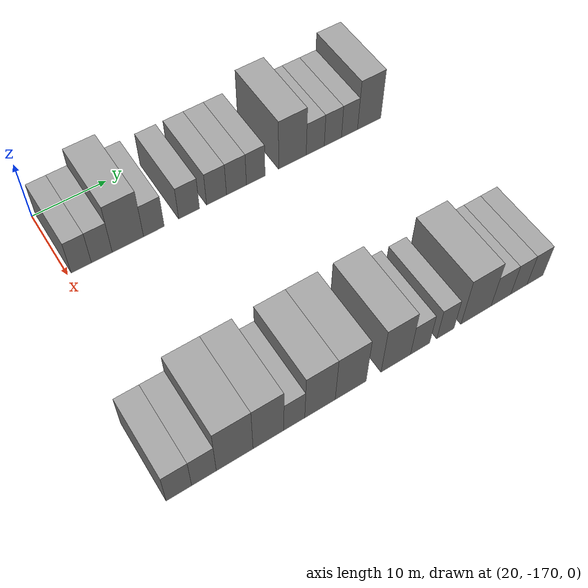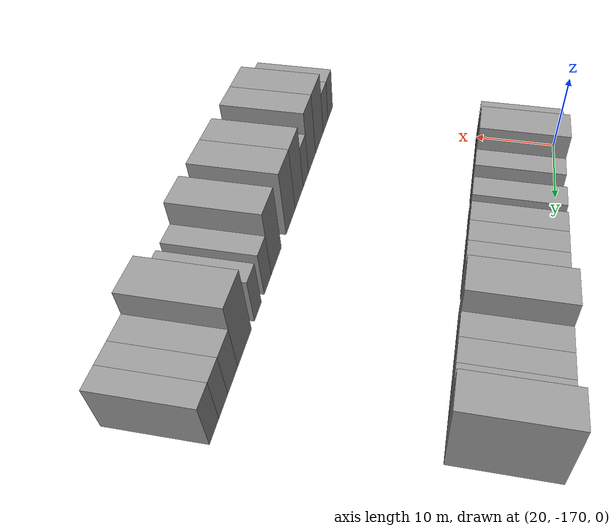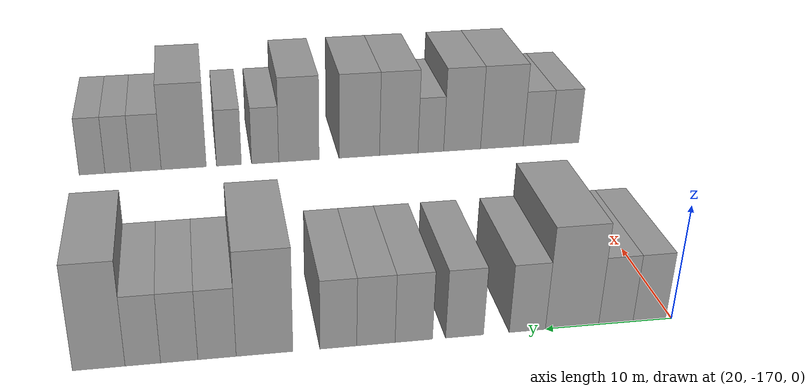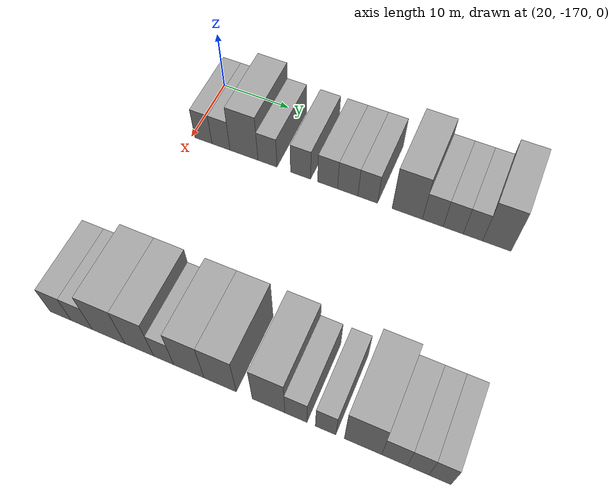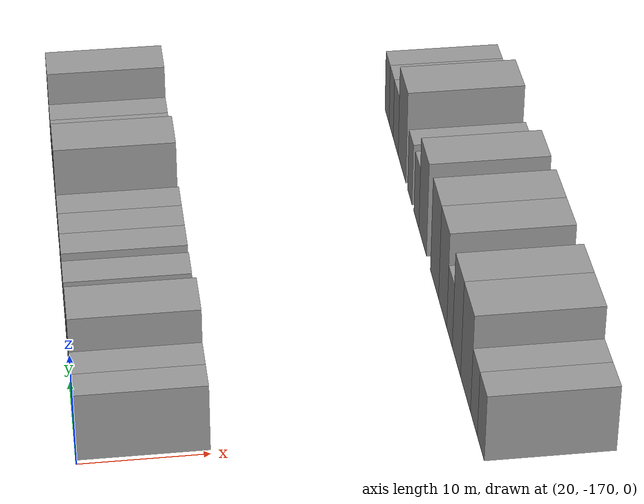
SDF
<sdf version="1.6">
 <world name="default">
  <model name="building_14">
   <static>1</static>
   <pose>25.0000 -168.2196 0 0.000000 0.000000 0.000000</pose>
   <link name="link">
    <pose>0 0 3.00 0 0 0</pose>
    <collision name="collision"><geometry><box><size>10.0000 2.6327 6.0000</size></box></geometry></collision>
    <visual name="visual">
     <cast_shadows>0</cast_shadows>
     <geometry><box><size>10.0000 2.6327 6.0000</size></box></geometry>
     <material>
      <script>
       <uri>model://grey_wall/materials/scripts</uri>
       <uri>model://grey_wall/materials/textures</uri>
       <name>vrc/grey_wall</name>
      </script>
     </material>
    </visual>
   </link>
  </model>
  <model name="building_15">
   <static>1</static>
   <pose>25.0000 -165.5320 0 0.000000 0.000000 0.000000</pose>
   <link name="link">
    <pose>0 0 3.00 0 0 0</pose>
    <collision name="collision"><geometry><box><size>10.0000 2.7424 6.0000</size></box></geometry></collision>
    <visual name="visual">
     <cast_shadows>0</cast_shadows>
     <geometry><box><size>10.0000 2.7424 6.0000</size></box></geometry>
     <material>
      <script>
       <uri>model://grey_wall/materials/scripts</uri>
       <uri>model://grey_wall/materials/textures</uri>
       <name>vrc/grey_wall</name>
      </script>
     </material>
    </visual>
   </link>
  </model>
  <model name="building_16">
   <static>1</static>
   <pose>25.0000 -162.0608 0 0.000000 0.000000 0.000000</pose>
   <link name="link">
    <pose>0 0 4.50 0 0 0</pose>
    <collision name="collision"><geometry><box><size>10.0000 4.2000 9.0000</size></box></geometry></collision>
    <visual name="visual">
     <cast_shadows>0</cast_shadows>
     <geometry><box><size>10.0000 4.2000 9.0000</size></box></geometry>
     <material>
      <script>
       <uri>model://grey_wall/materials/scripts</uri>
       <uri>model://grey_wall/materials/textures</uri>
       <name>vrc/grey_wall</name>
      </script>
     </material>
    </visual>
   </link>
  </model>
  <model name="building_17">
   <static>1</static>
   <pose>25.0000 -158.5487 0 0.000000 0.000000 0.000000</pose>
   <link name="link">
    <pose>0 0 3.00 0 0 0</pose>
    <collision name="collision"><geometry><box><size>10.0000 2.8243 6.0000</size></box></geometry></collision>
    <visual name="visual">
     <cast_shadows>0</cast_shadows>
     <geometry><box><size>10.0000 2.8243 6.0000</size></box></geometry>
     <material>
      <script>
       <uri>model://grey_wall/materials/scripts</uri>
       <uri>model://grey_wall/materials/textures</uri>
       <name>vrc/grey_wall</name>
      </script>
     </material>
    </visual>
   </link>
  </model>
  <model name="building_18">
   <static>1</static>
   <pose>25.0000 -153.6784 0 0.000000 0.000000 0.000000</pose>
   <link name="link">
    <pose>0 0 3.00 0 0 0</pose>
    <collision name="collision"><geometry><box><size>10.0000 2.9164 6.0000</size></box></geometry></collision>
    <visual name="visual">
     <cast_shadows>0</cast_shadows>
     <geometry><box><size>10.0000 2.9164 6.0000</size></box></geometry>
     <material>
      <script>
       <uri>model://grey_wall/materials/scripts</uri>
       <uri>model://grey_wall/materials/textures</uri>
       <name>vrc/grey_wall</name>
      </script>
     </material>
    </visual>
   </link>
  </model>
  <model name="building_19">
   <static>1</static>
   <pose>25.0000 -149.7978 0 0.000000 0.000000 0.000000</pose>
   <link name="link">
    <pose>0 0 3.00 0 0 0</pose>
    <collision name="collision"><geometry><box><size>10.0000 2.8447 6.0000</size></box></geometry></collision>
    <visual name="visual">
     <cast_shadows>0</cast_shadows>
     <geometry><box><size>10.0000 2.8447 6.0000</size></box></geometry>
     <material>
      <script>
       <uri>model://grey_wall/materials/scripts</uri>
       <uri>model://grey_wall/materials/textures</uri>
       <name>vrc/grey_wall</name>
      </script>
     </material>
    </visual>
   </link>
  </model>
  <model name="building_20">
   <static>1</static>
   <pose>25.0000 -146.9316 0 0.000000 0.000000 0.000000</pose>
   <link name="link">
    <pose>0 0 3.00 0 0 0</pose>
    <collision name="collision"><geometry><box><size>10.0000 2.8878 6.0000</size></box></geometry></collision>
    <visual name="visual">
     <cast_shadows>0</cast_shadows>
     <geometry><box><size>10.0000 2.8878 6.0000</size></box></geometry>
     <material>
      <script>
       <uri>model://grey_wall/materials/scripts</uri>
       <uri>model://grey_wall/materials/textures</uri>
       <name>vrc/grey_wall</name>
      </script>
     </material>
    </visual>
   </link>
  </model>
  <model name="building_21">
   <static>1</static>
   <pose>25.0000 -144.1135 0 0.000000 0.000000 0.000000</pose>
   <link name="link">
    <pose>0 0 3.00 0 0 0</pose>
    <collision name="collision"><geometry><box><size>10.0000 2.7484 6.0000</size></box></geometry></collision>
    <visual name="visual">
     <cast_shadows>0</cast_shadows>
     <geometry><box><size>10.0000 2.7484 6.0000</size></box></geometry>
     <material>
      <script>
       <uri>model://grey_wall/materials/scripts</uri>
       <uri>model://grey_wall/materials/textures</uri>
       <name>vrc/grey_wall</name>
      </script>
     </material>
    </visual>
   </link>
  </model>
  <model name="building_22">
   <static>1</static>
   <pose>25.0000 -138.6592 0 0.000000 0.000000 0.000000</pose>
   <link name="link">
    <pose>0 0 4.50 0 0 0</pose>
    <collision name="collision"><geometry><box><size>10.0000 4.1602 9.0000</size></box></geometry></collision>
    <visual name="visual">
     <cast_shadows>0</cast_shadows>
     <geometry><box><size>10.0000 4.1602 9.0000</size></box></geometry>
     <material>
      <script>
       <uri>model://grey_wall/materials/scripts</uri>
       <uri>model://grey_wall/materials/textures</uri>
       <name>vrc/grey_wall</name>
      </script>
     </material>
    </visual>
   </link>
  </model>
  <model name="building_23">
   <static>1</static>
   <pose>25.0000 -135.1899 0 0.000000 0.000000 0.000000</pose>
   <link name="link">
    <pose>0 0 3.00 0 0 0</pose>
    <collision name="collision"><geometry><box><size>10.0000 2.7784 6.0000</size></box></geometry></collision>
    <visual name="visual">
     <cast_shadows>0</cast_shadows>
     <geometry><box><size>10.0000 2.7784 6.0000</size></box></geometry>
     <material>
      <script>
       <uri>model://grey_wall/materials/scripts</uri>
       <uri>model://grey_wall/materials/textures</uri>
       <name>vrc/grey_wall</name>
      </script>
     </material>
    </visual>
   </link>
  </model>
  <model name="building_24">
   <static>1</static>
   <pose>25.0000 -132.4624 0 0.000000 0.000000 0.000000</pose>
   <link name="link">
    <pose>0 0 3.00 0 0 0</pose>
    <collision name="collision"><geometry><box><size>10.0000 2.6766 6.0000</size></box></geometry></collision>
    <visual name="visual">
     <cast_shadows>0</cast_shadows>
     <geometry><box><size>10.0000 2.6766 6.0000</size></box></geometry>
     <material>
      <script>
       <uri>model://grey_wall/materials/scripts</uri>
       <uri>model://grey_wall/materials/textures</uri>
       <name>vrc/grey_wall</name>
      </script>
     </material>
    </visual>
   </link>
  </model>
  <model name="building_25">
   <static>1</static>
   <pose>25.0000 -129.8567 0 0.000000 0.000000 0.000000</pose>
   <link name="link">
    <pose>0 0 3.00 0 0 0</pose>
    <collision name="collision"><geometry><box><size>10.0000 2.5349 6.0000</size></box></geometry></collision>
    <visual name="visual">
     <cast_shadows>0</cast_shadows>
     <geometry><box><size>10.0000 2.5349 6.0000</size></box></geometry>
     <material>
      <script>
       <uri>model://grey_wall/materials/scripts</uri>
       <uri>model://grey_wall/materials/textures</uri>
       <name>vrc/grey_wall</name>
      </script>
     </material>
    </visual>
   </link>
  </model>
  <model name="building_26">
   <static>1</static>
   <pose>25.0000 -126.7291 0 0.000000 0.000000 0.000000</pose>
   <link name="link">
    <pose>0 0 4.50 0 0 0</pose>
    <collision name="collision"><geometry><box><size>10.0000 3.7203 9.0000</size></box></geometry></collision>
    <visual name="visual">
     <cast_shadows>0</cast_shadows>
     <geometry><box><size>10.0000 3.7203 9.0000</size></box></geometry>
     <material>
      <script>
       <uri>model://grey_wall/materials/scripts</uri>
       <uri>model://grey_wall/materials/textures</uri>
       <name>vrc/grey_wall</name>
      </script>
     </material>
    </visual>
   </link>
  </model>
  <model name="building_126">
   <static>1</static>
   <pose>55.0000 -171.8422 0 0.000000 0.000000 0.000000</pose>
   <link name="link">
    <pose>0 0 3.00 0 0 0</pose>
    <collision name="collision"><geometry><box><size>10.0000 2.9795 6.0000</size></box></geometry></collision>
    <visual name="visual">
     <cast_shadows>0</cast_shadows>
     <geometry><box><size>10.0000 2.9795 6.0000</size></box></geometry>
     <material>
      <script>
       <uri>model://grey_wall/materials/scripts</uri>
       <uri>model://grey_wall/materials/textures</uri>
       <name>vrc/grey_wall</name>
      </script>
     </material>
    </visual>
   </link>
  </model>
  <model name="building_127">
   <static>1</static>
   <pose>55.0000 -168.8943 0 0.000000 0.000000 0.000000</pose>
   <link name="link">
    <pose>0 0 3.00 0 0 0</pose>
    <collision name="collision"><geometry><box><size>10.0000 2.9164 6.0000</size></box></geometry></collision>
    <visual name="visual">
     <cast_shadows>0</cast_shadows>
     <geometry><box><size>10.0000 2.9164 6.0000</size></box></geometry>
     <material>
      <script>
       <uri>model://grey_wall/materials/scripts</uri>
       <uri>model://grey_wall/materials/textures</uri>
       <name>vrc/grey_wall</name>
      </script>
     </material>
    </visual>
   </link>
  </model>
  <model name="building_128">
   <static>1</static>
   <pose>55.0000 -165.2141 0 0.000000 0.000000 0.000000</pose>
   <link name="link">
    <pose>0 0 4.50 0 0 0</pose>
    <collision name="collision"><geometry><box><size>10.0000 4.4440 9.0000</size></box></geometry></collision>
    <visual name="visual">
     <cast_shadows>0</cast_shadows>
     <geometry><box><size>10.0000 4.4440 9.0000</size></box></geometry>
     <material>
      <script>
       <uri>model://grey_wall/materials/scripts</uri>
       <uri>model://grey_wall/materials/textures</uri>
       <name>vrc/grey_wall</name>
      </script>
     </material>
    </visual>
   </link>
  </model>
  <model name="building_129">
   <static>1</static>
   <pose>55.0000 -161.0821 0 0.000000 0.000000 0.000000</pose>
   <link name="link">
    <pose>0 0 4.50 0 0 0</pose>
    <collision name="collision"><geometry><box><size>10.0000 3.8199 9.0000</size></box></geometry></collision>
    <visual name="visual">
     <cast_shadows>0</cast_shadows>
     <geometry><box><size>10.0000 3.8199 9.0000</size></box></geometry>
     <material>
      <script>
       <uri>model://grey_wall/materials/scripts</uri>
       <uri>model://grey_wall/materials/textures</uri>
       <name>vrc/grey_wall</name>
      </script>
     </material>
    </visual>
   </link>
  </model>
  <model name="building_130">
   <static>1</static>
   <pose>55.0000 -157.8554 0 0.000000 0.000000 0.000000</pose>
   <link name="link">
    <pose>0 0 3.00 0 0 0</pose>
    <collision name="collision"><geometry><box><size>10.0000 2.6336 6.0000</size></box></geometry></collision>
    <visual name="visual">
     <cast_shadows>0</cast_shadows>
     <geometry><box><size>10.0000 2.6336 6.0000</size></box></geometry>
     <material>
      <script>
       <uri>model://grey_wall/materials/scripts</uri>
       <uri>model://grey_wall/materials/textures</uri>
       <name>vrc/grey_wall</name>
      </script>
     </material>
    </visual>
   </link>
  </model>
  <model name="building_131">
   <static>1</static>
   <pose>55.0000 -154.5761 0 0.000000 0.000000 0.000000</pose>
   <link name="link">
    <pose>0 0 4.50 0 0 0</pose>
    <collision name="collision"><geometry><box><size>10.0000 3.9250 9.0000</size></box></geometry></collision>
    <visual name="visual">
     <cast_shadows>0</cast_shadows>
     <geometry><box><size>10.0000 3.9250 9.0000</size></box></geometry>
     <material>
      <script>
       <uri>model://grey_wall/materials/scripts</uri>
       <uri>model://grey_wall/materials/textures</uri>
       <name>vrc/grey_wall</name>
      </script>
     </material>
    </visual>
   </link>
  </model>
  <model name="building_132">
   <static>1</static>
   <pose>55.0000 -150.5693 0 0.000000 0.000000 0.000000</pose>
   <link name="link">
    <pose>0 0 4.50 0 0 0</pose>
    <collision name="collision"><geometry><box><size>10.0000 4.0886 9.0000</size></box></geometry></collision>
    <visual name="visual">
     <cast_shadows>0</cast_shadows>
     <geometry><box><size>10.0000 4.0886 9.0000</size></box></geometry>
     <material>
      <script>
       <uri>model://grey_wall/materials/scripts</uri>
       <uri>model://grey_wall/materials/textures</uri>
       <name>vrc/grey_wall</name>
      </script>
     </material>
    </visual>
   </link>
  </model>
  <model name="building_133">
   <static>1</static>
   <pose>55.0000 -144.5173 0 0.000000 0.000000 0.000000</pose>
   <link name="link">
    <pose>0 0 4.50 0 0 0</pose>
    <collision name="collision"><geometry><box><size>10.0000 4.0153 9.0000</size></box></geometry></collision>
    <visual name="visual">
     <cast_shadows>0</cast_shadows>
     <geometry><box><size>10.0000 4.0153 9.0000</size></box></geometry>
     <material>
      <script>
       <uri>model://grey_wall/materials/scripts</uri>
       <uri>model://grey_wall/materials/textures</uri>
       <name>vrc/grey_wall</name>
      </script>
     </material>
    </visual>
   </link>
  </model>
  <model name="building_134">
   <static>1</static>
   <pose>55.0000 -141.1686 0 0.000000 0.000000 0.000000</pose>
   <link name="link">
    <pose>0 0 3.00 0 0 0</pose>
    <collision name="collision"><geometry><box><size>10.0000 2.6822 6.0000</size></box></geometry></collision>
    <visual name="visual">
     <cast_shadows>0</cast_shadows>
     <geometry><box><size>10.0000 2.6822 6.0000</size></box></geometry>
     <material>
      <script>
       <uri>model://grey_wall/materials/scripts</uri>
       <uri>model://grey_wall/materials/textures</uri>
       <name>vrc/grey_wall</name>
      </script>
     </material>
    </visual>
   </link>
  </model>
  <model name="building_135">
   <static>1</static>
   <pose>55.0000 -137.6076 0 0.000000 0.000000 0.000000</pose>
   <link name="link">
    <pose>0 0 3.00 0 0 0</pose>
    <collision name="collision"><geometry><box><size>10.0000 2.4399 6.0000</size></box></geometry></collision>
    <visual name="visual">
     <cast_shadows>0</cast_shadows>
     <geometry><box><size>10.0000 2.4399 6.0000</size></box></geometry>
     <material>
      <script>
       <uri>model://grey_wall/materials/scripts</uri>
       <uri>model://grey_wall/materials/textures</uri>
       <name>vrc/grey_wall</name>
      </script>
     </material>
    </visual>
   </link>
  </model>
  <model name="building_136">
   <static>1</static>
   <pose>55.0000 -133.2056 0 0.000000 0.000000 0.000000</pose>
   <link name="link">
    <pose>0 0 4.50 0 0 0</pose>
    <collision name="collision"><geometry><box><size>10.0000 4.3640 9.0000</size></box></geometry></collision>
    <visual name="visual">
     <cast_shadows>0</cast_shadows>
     <geometry><box><size>10.0000 4.3640 9.0000</size></box></geometry>
     <material>
      <script>
       <uri>model://grey_wall/materials/scripts</uri>
       <uri>model://grey_wall/materials/textures</uri>
       <name>vrc/grey_wall</name>
      </script>
     </material>
    </visual>
   </link>
  </model>
  <model name="building_137">
   <static>1</static>
   <pose>55.0000 -129.5626 0 0.000000 0.000000 0.000000</pose>
   <link name="link">
    <pose>0 0 3.00 0 0 0</pose>
    <collision name="collision"><geometry><box><size>10.0000 2.9221 6.0000</size></box></geometry></collision>
    <visual name="visual">
     <cast_shadows>0</cast_shadows>
     <geometry><box><size>10.0000 2.9221 6.0000</size></box></geometry>
     <material>
      <script>
       <uri>model://grey_wall/materials/scripts</uri>
       <uri>model://grey_wall/materials/textures</uri>
       <name>vrc/grey_wall</name>
      </script>
     </material>
    </visual>
   </link>
  </model>
  <model name="building_138">
   <static>1</static>
   <pose>55.0000 -126.8730 0 0.000000 0.000000 0.000000</pose>
   <link name="link">
    <pose>0 0 3.00 0 0 0</pose>
    <collision name="collision"><geometry><box><size>10.0000 2.4571 6.0000</size></box></geometry></collision>
    <visual name="visual">
     <cast_shadows>0</cast_shadows>
     <geometry><box><size>10.0000 2.4571 6.0000</size></box></geometry>
     <material>
      <script>
       <uri>model://grey_wall/materials/scripts</uri>
       <uri>model://grey_wall/materials/textures</uri>
       <name>vrc/grey_wall</name>
      </script>
     </material>
    </visual>
   </link>
  </model>
  <model name="building_139">
   <static>1</static>
   <pose>55.0000 -124.4139 0 0.000000 0.000000 0.000000</pose>
   <link name="link">
    <pose>0 0 3.00 0 0 0</pose>
    <collision name="collision"><geometry><box><size>10.0000 2.4611 6.0000</size></box></geometry></collision>
    <visual name="visual">
     <cast_shadows>0</cast_shadows>
     <geometry><box><size>10.0000 2.4611 6.0000</size></box></geometry>
     <material>
      <script>
       <uri>model://grey_wall/materials/scripts</uri>
       <uri>model://grey_wall/materials/textures</uri>
       <name>vrc/grey_wall</name>
      </script>
     </material>
    </visual>
   </link>
  </model>
 </world>
</sdf>
